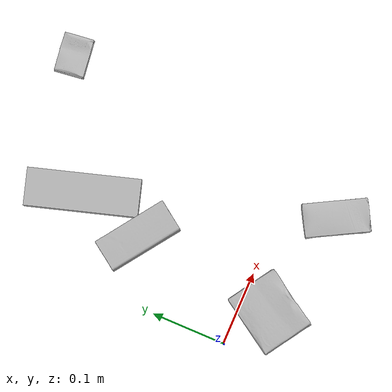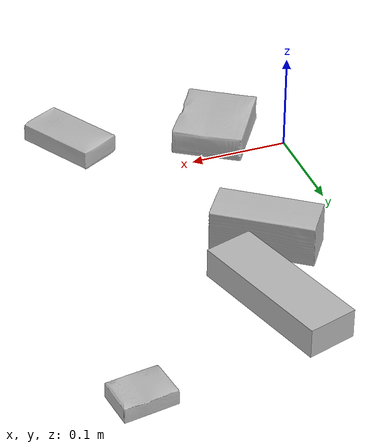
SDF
<sdf version="1.4">
  <world name="default">
    <light name="light1" type="point">
      <pose>0 0 1 0 0 0</pose>
      <diffuse>3 3 3 1</diffuse>
      <specular>3 3 3 1</specular>
    </light>
    <light name="light2" type="point">
      <pose>0 0.5 2 0 0 0</pose>
      <diffuse>1 1 1 1</diffuse>
      <specular>1 1 1 1</specular>
    </light>
    <light name="light3" type="point">
      <pose>0 0.5 2 0 0 0</pose>
      <diffuse>3 3 3 1</diffuse>
      <specular>3 3 3 1</specular>
    </light>
    <scene>
      <ambient>0.7 0.7 0.7</ambient>
    </scene>
    <model name="box1">
      <link name="link_box1">
        <collision name="default">
          <geometry>
            <mesh>
              <uri>model://sugar_box/collision_meshes/collision.obj</uri>
              <scale>0.5 0.5 0.5</scale>
            </mesh>
          </geometry>
          <surface>
            <friction>
              <ode>
                <mu>0.5</mu>
                <mu2>0.5</mu2>
              </ode>
            </friction>
          <contact>
        <ode>
            <max_vel>0</max_vel>
            <min_depth>0.0001</min_depth>
            <kp>1e8</kp>
        </ode>
    </contact></surface>
        </collision>
        <visual name="default">
          <geometry>
            <mesh>
              <uri>model://sugar_box/visual_meshes/visual.dae</uri>
              <scale>0.5 0.5 0.5</scale>
            </mesh>
          </geometry>
        </visual>
        <inertial>
          <mass>0.05016465485095978</mass>
          <pose>0.0005171863595023751 1.924554817378521e-05 -0.0001818240125430748 -0.00040462615463102695 0.0010506635220671036 0.0026153792546614123</pose>
          <inertia>
            <ixx>1.0449262e-05</ixx>
            <iyy>3.3774166e-05</iyy>
            <izz>4.0431696e-05</izz>
            <ixy>0</ixy>
            <ixz>0</ixz>
            <iyz>0</iyz>
          </inertia>
        </inertial>
      </link>
      <pose>0.20877647399902344 -0.07118520140647888 0.011399301700294018 0.0007756776813149879 -0.023432682575102858 2.065456178888526</pose>
    </model>
    <model name="box2">
      <link name="link_box2">
        <collision name="default">
          <geometry>
            <mesh>
              <uri>model://cracker_box/collision_meshes/collision.obj</uri>
              <scale>0.25 0.25 0.25</scale>
            </mesh>
          </geometry>
          <surface>
            <friction>
              <ode>
                <mu>0.5</mu>
                <mu2>0.5</mu2>
              </ode>
            </friction>
          <contact>
        <ode>
            <max_vel>0</max_vel>
            <min_depth>0.0001</min_depth>
            <kp>1e8</kp>
        </ode>
    </contact></surface>
        </collision>
        <visual name="default">
          <geometry>
            <mesh>
              <uri>model://cracker_box/visual_meshes/visual.dae</uri>
              <scale>0.25 0.25 0.25</scale>
            </mesh>
          </geometry>
        </visual>
        <inertial>
          <mass>0.05325852707028389</mass>
          <pose>0.0002366033149883151 6.358561950037256e-05 -0.0004257383698131889 -0.000316207624135088 -0.011106486806293444 0.0025467950014945295</pose>
          <inertia>
            <ixx>8.46662e-06</ixx>
            <iyy>1.3980052e-05</iyy>
            <izz>1.995082e-05</izz>
            <ixy>0</ixy>
            <ixz>0</ixz>
            <iyz>0</iyz>
          </inertia>
        </inertial>
      </link>
      <pose>0.27117571234703064 0.32883772253990173 0.009120452217757702 -0.01178808958137088 -0.007367202524472079 -3.0198233444475315</pose>
    </model>
    <model name="box3">
      <link name="link_box3">
        <collision name="default">
          <geometry>
            <mesh>
              <uri>model://wood_block/collision_meshes/collision.obj</uri>
              <scale>0.5 0.5 0.5</scale>
            </mesh>
          </geometry>
          <surface>
            <friction>
              <ode>
                <mu>0.5</mu>
                <mu2>0.5</mu2>
              </ode>
            </friction>
          <contact>
        <ode>
            <max_vel>0</max_vel>
            <min_depth>0.0001</min_depth>
            <kp>1e8</kp>
        </ode>
    </contact></surface>
        </collision>
        <visual name="default">
          <geometry>
            <mesh>
              <uri>model://wood_block/visual_meshes/visual.dae</uri>
              <scale>0.5 0.5 0.5</scale>
            </mesh>
          </geometry>
        </visual>
        <inertial>
          <mass>0.24977724254131317</mass>
          <pose>-2.9066577553749084e-06 -0.00028540476341731846 0.00013204291462898254 -0.05220975529066727 -0.005192695547513155 -0.006861377927637377</pose>
          <inertia>
            <ixx>8.355995e-05</ixx>
            <iyy>0.00026396586</iyy>
            <izz>0.00026297852</izz>
            <ixy>0</ixy>
            <ixz>0</ixz>
            <iyz>0</iyz>
          </inertia>
        </inertial>
      </link>
      <pose>0.08526123315095901 0.15745531022548676 0.022527484223246574 -0.015846602479664254 -0.0004013289477887331 -0.6152364683605326</pose>
    </model>
    <model name="box4">
      <link name="link_box4">
        <collision name="default">
          <geometry>
            <mesh>
              <uri>model://gelatin_box/collision_meshes/collision.obj</uri>
              <scale>1.0 1.0 1.0</scale>
            </mesh>
          </geometry>
          <surface>
            <friction>
              <ode>
                <mu>0.5</mu>
                <mu2>0.5</mu2>
              </ode>
            </friction>
          <contact>
        <ode>
            <max_vel>0</max_vel>
            <min_depth>0.0001</min_depth>
            <kp>1e8</kp>
        </ode>
    </contact></surface>
        </collision>
        <visual name="default">
          <geometry>
            <mesh>
              <uri>model://gelatin_box/visual_meshes/visual.dae</uri>
              <scale>1.0 1.0 1.0</scale>
            </mesh>
          </geometry>
        </visual>
        <inertial>
          <mass>0.142814502120018</mass>
          <pose>0.0004319618456065655 0.00011156871187267825 -0.0003640321083366871 -0.0010503719804291966 -0.004755819155973465 0.01644055947187314</pose>
          <inertia>
            <ixx>0.000100815385</ixx>
            <iyy>7.20119e-05</iyy>
            <izz>0.00015346348</izz>
            <ixy>0</ixy>
            <ixz>0</ixz>
            <iyz>0</iyz>
          </inertia>
        </inertial>
      </link>
      <pose>0.06142937391996384 -0.03845195472240448 0.015168309211730957 0.0055974895637411785 -0.007304576553472455 -0.582606767393143</pose>
    </model>
    <model name="box5">
      <link name="link_box5">
        <collision name="default">
          <geometry>
            <mesh>
              <uri>model://jenga/collision_meshes/collision.obj</uri>
              <scale>1.0 1.0 1.0</scale>
            </mesh>
          </geometry>
          <surface>
            <friction>
              <ode>
                <mu>0.5</mu>
                <mu2>0.5</mu2>
              </ode>
            </friction>
          <contact>
        <ode>
            <max_vel>0</max_vel>
            <min_depth>0.0001</min_depth>
            <kp>1e8</kp>
        </ode>
    </contact></surface>
        </collision>
        <visual name="default">
          <geometry>
            <mesh>
              <uri>model://jenga/visual_meshes/visual.dae</uri>
              <scale>1.0 1.0 1.0</scale>
            </mesh>
          </geometry>
        </visual>
        <inertial>
          <mass>0.11303283274173737</mass>
          <pose>-2.502855807051674e-07 -0.00010250010382151231 -4.0923401684267446e-05 0.0 -7.342155186052628e-07 0.0</pose>
          <inertia>
            <ixx>3.127893e-05</ixx>
            <iyy>0.00021194515</iyy>
            <izz>0.00022626946</izz>
            <ixy>0</ixy>
            <ixz>0</ixz>
            <iyz>0</iyz>
          </inertia>
        </inertial>
      </link>
      <pose>0.10935073345899582 0.2465815246105194 0.01499999687075615 2.4863114646426692e-08 2.903715638029368e-09 -1.2774571511757769</pose>
    </model>
  <physics type="ode">
      <max_contacts>50</max_contacts>
      <ode>
        <solver>
          <type>quick</type>
          <iters>75</iters>
        </solver>
        <constraints>
          <contact_max_correcting_vel>0</contact_max_correcting_vel>
          <contact_surface_layer>0</contact_surface_layer>
        </constraints>
      </ode>
    </physics></world>
</sdf>
